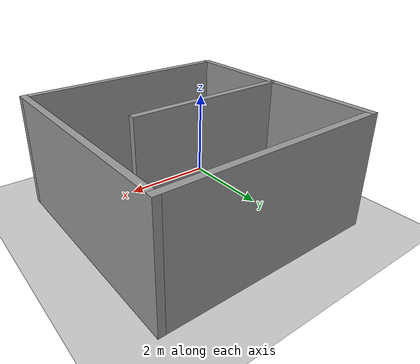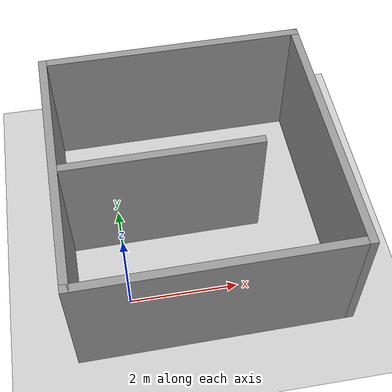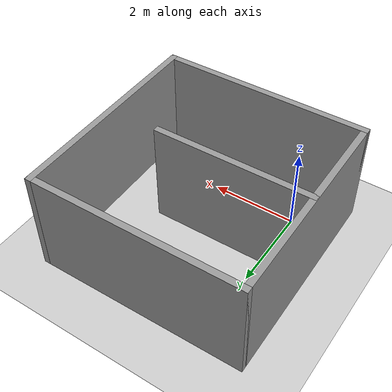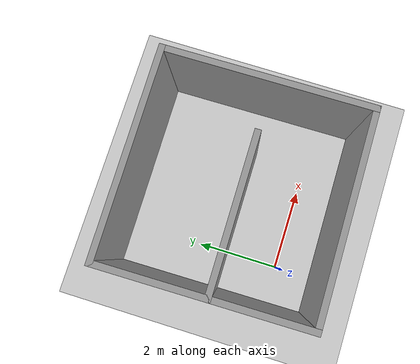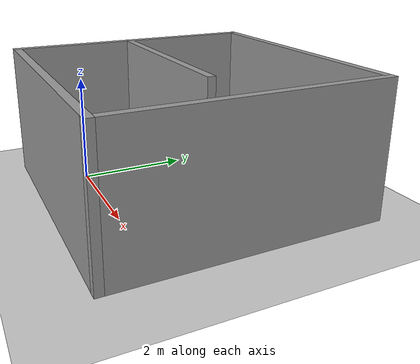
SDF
<sdf version="1.7">
 <world name="default">
  <light name="sun" type="directional">
   <pose>0 0 10 0 -0 0</pose>
   <diffuse>0.8 0.8 0.8 1</diffuse>
   <specular>0.2 0.2 0.2 1</specular>
   <attenuation>
    <range>1000</range>
    <constant>0.9</constant>
    <linear>0.01</linear>
    <quadratic>0.001</quadratic>
   </attenuation>
   <direction>-0.5 0.1 -0.9</direction>
   <spot><inner_angle>0</inner_angle><outer_angle>0</outer_angle><falloff>0</falloff></spot>
  </light>
  <model name="ground_plane">
   <static>1</static>
   <link name="link">
    <collision name="collision">
     <geometry><plane><normal>0 0 1</normal><size>100 100</size></plane></geometry>
     <surface><friction><ode><mu>100</mu><mu2>50</mu2></ode></friction></surface>
    </collision>
    <visual name="visual">
     <cast_shadows>0</cast_shadows>
     <geometry><plane><normal>0 0 1</normal><size>100 100</size></plane></geometry>
     <material>
      <script><uri>file://media/materials/scripts/gazebo.material</uri><name>Gazebo/Grey</name></script>
     </material>
    </visual>
   </link>
  </model>
  <gravity>0 0 -9.8</gravity>
  <magnetic_field>6e-06 2.3e-05 -4.2e-05</magnetic_field>
  <atmosphere type="adiabatic"/>
  <physics type="ode">
   <max_step_size>0.001</max_step_size>
   <real_time_factor>1</real_time_factor>
   <real_time_update_rate>1000</real_time_update_rate>
  </physics>
  <scene><ambient>0.4 0.4 0.4 1</ambient><background>0.7 0.7 0.7 1</background><shadows>1</shadows></scene>
  <audio><device>default</device></audio>
  <spherical_coordinates>
   <surface_model>EARTH_WGS84</surface_model>
   <latitude_deg>0</latitude_deg>
   <longitude_deg>0</longitude_deg>
   <elevation>0</elevation>
   <heading_deg>0</heading_deg>
  </spherical_coordinates>
  <model name="first_wall">
   <pose>0.774233 1.46869 0 0 -0 1.58095</pose>
   <link name="Wall_21">
    <collision name="Wall_21_Collision">
     <geometry><box><size>3.75 0.15 2.5</size></box></geometry>
     <pose>0 0 1.25 0 -0 0</pose>
    </collision>
    <visual name="Wall_21_Visual">
     <pose>0 0 1.25 0 -0 0</pose>
     <geometry><box><size>3.75 0.15 2.5</size></box></geometry>
     <material>
      <script><uri>file://media/materials/scripts/gazebo.material</uri><name>Gazebo/Grey</name></script>
      <ambient>1 1 1 1</ambient>
     </material>
     <meta><layer>0</layer></meta>
    </visual>
    <pose>-0.109714 -0.040941 0 0 -0 -1.5708</pose>
   </link>
   <link name="Wall_5">
    <collision name="Wall_5_Collision">
     <geometry><box><size>5 0.15 2.5</size></box></geometry>
     <pose>0 0 1.25 0 -0 0</pose>
    </collision>
    <visual name="Wall_5_Visual">
     <pose>0 0 1.25 0 -0 0</pose>
     <geometry><box><size>5 0.15 2.5</size></box></geometry>
     <material>
      <script><uri>file://media/materials/scripts/gazebo.material</uri><name>Gazebo/Grey</name></script>
      <ambient>1 1 1 1</ambient>
     </material>
     <meta><layer>0</layer></meta>
    </visual>
    <pose>0 1.772 0 0 -0 0</pose>
   </link>
   <link name="Wall_7">
    <collision name="Wall_7_Collision">
     <geometry><box><size>5 0.15 2.5</size></box></geometry>
     <pose>0 0 1.25 0 -0 0</pose>
    </collision>
    <visual name="Wall_7_Visual">
     <pose>0 0 1.25 0 -0 0</pose>
     <geometry><box><size>5 0.15 2.5</size></box></geometry>
     <material>
      <script><uri>file://media/materials/scripts/gazebo.material</uri><name>Gazebo/Grey</name></script>
      <ambient>1 1 1 1</ambient>
     </material>
     <meta><layer>0</layer></meta>
    </visual>
    <pose>2.425 -0.653 0 0 -0 -1.5708</pose>
   </link>
   <link name="Wall_8">
    <collision name="Wall_8_Collision">
     <geometry><box><size>5 0.15 2.5</size></box></geometry>
     <pose>0 0 1.25 0 -0 0</pose>
    </collision>
    <visual name="Wall_8_Visual">
     <pose>0 0 1.25 0 -0 0</pose>
     <geometry><box><size>5 0.15 2.5</size></box></geometry>
     <material>
      <script><uri>file://media/materials/scripts/gazebo.material</uri><name>Gazebo/Grey</name></script>
      <ambient>1 1 1 1</ambient>
     </material>
     <meta><layer>0</layer></meta>
    </visual>
    <pose>0 -3.078 0 0 -0 3.14159</pose>
   </link>
   <link name="Wall_9">
    <collision name="Wall_9_Collision">
     <geometry><box><size>5 0.15 2.5</size></box></geometry>
     <pose>0 0 1.25 0 -0 0</pose>
    </collision>
    <visual name="Wall_9_Visual">
     <pose>0 0 1.25 0 -0 0</pose>
     <geometry><box><size>5 0.15 2.5</size></box></geometry>
     <material>
      <script><uri>file://media/materials/scripts/gazebo.material</uri><name>Gazebo/Grey</name></script>
      <ambient>1 1 1 1</ambient>
     </material>
     <meta><layer>0</layer></meta>
    </visual>
    <pose>-2.425 -0.653 0 0 -0 1.5708</pose>
   </link>
   <static>1</static>
  </model>
 </world>
</sdf>
